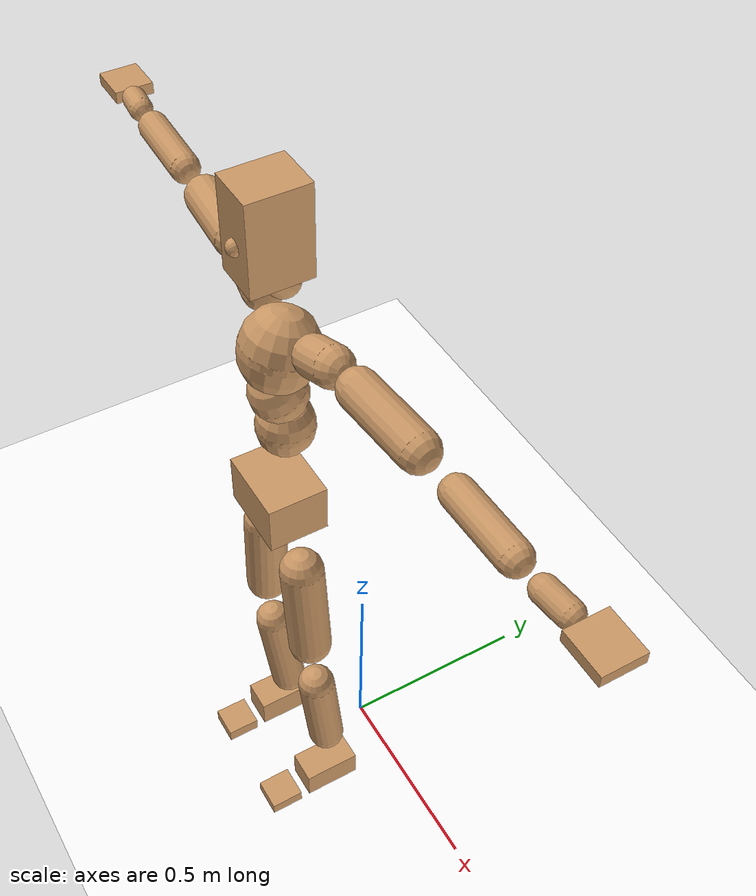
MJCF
<mujoco model="humanoid">
  <option integrator="implicitfast" />

  <visual>
    <global offwidth="1280" offheight="960" />
    <headlight active="1" ambient="0.34 0.34 0.34" diffuse="0.5 0.5 0.5" />
  </visual>

  <default>
    <joint damping="2" stiffness="2" armature="0.01" limited="true" solimplimit="0 .99 .01" />
    <geom condim="1" friction="0.7 0.005 0.0001" solimp=".99 .99 .003" solref="0.015 1" margin="0.001" rgba="0.8 0.6 .4 1" />
    <default class="smplcontact">
      <geom condim="3" friction="1. 0.005 0.0001" solref="0.015 1" solimp="0.98 0.98 0.001" priority="1" />
    </default>
    <default class="stiff_medium">
      <joint stiffness="10" />
    </default>
    <default class="stiff_medium_higher">
      <joint stiffness="50" />
    </default>
    <default class="stiff_high">
      <joint stiffness="100" />
    </default>
  </default>

  <asset>
    <texture type="skybox" builtin="gradient" rgb1="0.99 0.99 0.99" rgb2="0.608 0.828 0.892" width="100" />
    <texture builtin="flat" height="1278" mark="cross" markrgb="1 1 1" name="texgeom" random="0.01" rgb1="0.8 0.6 0.4" rgb2="0.8 0.6 0.4" type="cube" width="127" />
    <texture name="texplane" type="2d" builtin="checker" markrgb="1 1 1" rgb1="0.756 0.772 0.76" rgb2="0.6 0.6 0.6" width="100" height="100" />
    <material name="MatPlane" reflectance="0.5" texture="texplane" texrepeat="1 1" texuniform="true" />
    <material name="geom" texture="texgeom" texuniform="true" />
  </asset>

  <worldbody>
    <light name="tracking_light" pos="0 0 7" dir="0 0 -1" directional="true" cutoff="100" exponent="1" diffuse="1 1 1" specular="0.1 0.1 0.1" mode="trackcom" />
    <camera name="back" pos="0 3 2.4" xyaxes="-1 0 0 0 -1 2" mode="trackcom" />
    <camera name="side" pos="-3 0 2.4" xyaxes="0 -1 0 1 0 2" mode="trackcom" />
    <camera name="front_side" pos="-2.8 -2.8 0.8" xyaxes="0.5 -0.5 0 0.1 0.1 1" mode="trackcom" />
    <geom condim="3" name="floor" pos="0 0 0" rgba="1 1 1 1" size="100 100 .2" type="plane" material="MatPlane" />
    <body name="Pelvis" pos="-0.0018 -0.2233 1.07072" euler="90 0 0">
      <site name="Pelvis" size="0.01" />
      <freejoint name="Pelvis" />
      <geom type="box" pos="-0.0000 -0.0121 -0.0055" size="0.090865 0.06137 0.07055" quat="1.0000 0.0000 0.0000 0.0000" density="3165.830099" name="Pelvis" />
      <body name="L_Hip" pos="0.079925 -0.10511 -0.00782">
        <joint name="L_Hip_x" type="hinge" pos="0 0 0" axis="1 0 0" stiffness="8.727322708333334" range="-160.0 22.92" class="stiff_medium" damping="13.7654928941524" armature="0.009649837053974859"/>
        <joint name="L_Hip_y" type="hinge" pos="0 0 0" axis="0 1 0" stiffness="8.678915833333335" range="-70.0 70.0" class="stiff_medium" damping="7.844255494613409" armature="0.007089865306498746"/>
        <joint name="L_Hip_z" type="hinge" pos="0 0 0" axis="0 0 1" stiffness="8.683338229166669" range="-28.65 90.0" class="stiff_medium" damping="9.155596501626825" armature="0.00965353935184049"/>
        <geom type="capsule" density="2040.816327" fromto="0.007935 -0.08625 -0.001035 0.03151 -0.34523 -0.00414" size="0.052275" name="L_Hip" />
        <body name="L_Knee" pos="0.039445 -0.43148 -0.005175">
          <joint name="L_Knee_x" type="hinge" pos="0 0 0" axis="1 0 0" range="-5.16 171.89" damping="7.01397675499636" armature="0.009105876532635821" stiffness="1.6883283333333332"/>
          <joint name="L_Knee_y" type="hinge" pos="0 0 0" axis="0 1 0" range="-4.58 6.88" damping="6.0755838537689835" armature="0.006684317253510379" stiffness="1.7257147291666666"/>
          <joint name="L_Knee_z" type="hinge" pos="0 0 0" axis="0 0 1" range="-6.88 4.58" damping="6.984301330743021" armature="0.009122503294009918" stiffness="1.6710210833333332"/>
          <geom type="capsule" density="1234.567901" fromto="-0.003105 -0.09154 -0.010005 -0.012535 -0.36616 -0.04025" size="0.045985" name="L_Knee" />
          <body name="L_Ankle" pos="-0.01564 -0.4577 -0.050255">
            <joint name="L_Ankle_x" type="hinge" pos="0 0 0" axis="1 0 0" range="-45.84 45.84" class="stiff_medium" damping="4.176478959790078" armature="0.006860619347471826" stiffness="7.06244"/>
            <joint name="L_Ankle_y" type="hinge" pos="0 0 0" axis="0 1 0" range="-74.48 22.92" class="stiff_medium" damping="2.0744723161569043" armature="0.006770457346660474" stiffness="7.06244"/>
            <joint name="L_Ankle_z" type="hinge" pos="0 0 0" axis="0 0 1" range="-4.58 4.58" class="stiff_medium" damping="3.963966864211688" armature="0.006180203261734001" stiffness="7.06244"/>
            <geom type="box" pos="0.026795 -0.027485 0.02783" size="0.041055 0.03944 0.07225" quat="1.0000 0.0000 0.0000 0.0000" density="449.071558" name="L_Ankle" class="smplcontact" />
            <body name="L_Toe" pos="0.03036 -0.06417 0.137195">
              <joint name="L_Toe_x" type="hinge" pos="0 0 0" axis="1 0 0" range="-91.67 22.92" armature="0.005837950531633816" damping="1.2842145514302805" stiffness="1.412488"/>
              <joint name="L_Toe_y" type="hinge" pos="0 0 0" axis="0 1 0" range="-4.58 4.58" armature="0.00542409844322428" damping="1.2378589549599726" stiffness="1.412488"/>
              <joint name="L_Toe_z" type="hinge" pos="0 0 0" axis="0 0 1" range="-4.58 4.58" armature="0.004587311795946917" damping="1.1383780447666292" stiffness="1.412488"/>
              <geom type="box" pos="-0.00345 0.006325 0.02852" size="0.04063 0.017 0.04216" quat="1.0000 0.0000 0.0000 0.0000" density="423.206892" name="L_Toe" class="smplcontact" />
            </body>
          </body>
        </body>
      </body>
      <body name="R_Hip" pos="-0.077855 -0.104075 -0.004945">
        <joint name="R_Hip_x" type="hinge" pos="0 0 0" axis="1 0 0" stiffness="8.727322708333334" range="-160.0 22.92" class="stiff_medium" damping="13.7654928941524" armature="0.009649837053974859"/>
        <joint name="R_Hip_y" type="hinge" pos="0 0 0" axis="0 1 0" stiffness="8.678915833333335" range="-70.0 70.0" class="stiff_medium" damping="7.844255494613409" armature="0.007089865306498746"/>
        <joint name="R_Hip_z" type="hinge" pos="0 0 0" axis="0 0 1" stiffness="8.683338229166669" range="-90.0 28.65" class="stiff_medium" damping="9.155596501626825" armature="0.00965353935184049"/>
        <geom type="capsule" density="2040.816327" fromto="-0.008855 -0.087975 -0.00207 -0.03519 -0.352015 -0.008165" size="0.05151" name="R_Hip" />
        <body name="R_Knee" pos="-0.044045 -0.43999 -0.010235">
          <joint name="R_Knee_x" type="hinge" pos="0 0 0" axis="1 0 0" range="-5.16 171.89" damping="7.01397675499636" armature="0.009105876532635821" stiffness="1.6883283333333332"/>
          <joint name="R_Knee_y" type="hinge" pos="0 0 0" axis="0 1 0" range="-6.88 4.58" damping="6.0755838537689835" armature="0.006684317253510379" stiffness="1.7257147291666666"/>
          <joint name="R_Knee_z" type="hinge" pos="0 0 0" axis="0 0 1" range="-4.58 6.88" damping="6.984301330743021" armature="0.009122503294009918" stiffness="1.6710210833333332"/>
          <geom type="capsule" density="1234.567901" fromto="0.00368 -0.091655 -0.009775 0.01449 -0.366505 -0.03887" size="0.045985" name="R_Knee" />
          <body name="R_Ankle" pos="0.01817 -0.45816 -0.048645">
            <joint name="R_Ankle_x" type="hinge" pos="0 0 0" axis="1 0 0" range="-45.84 45.84" class="stiff_medium" damping="4.176478959790078" armature="0.006860619347471826" stiffness="7.06244"/>
            <joint name="R_Ankle_y" type="hinge" pos="0 0 0" axis="0 1 0" range="-22.92 74.48" class="stiff_medium" damping="2.0744723161569043" armature="0.006770457346660474" stiffness="7.06244"/>
            <joint name="R_Ankle_z" type="hinge" pos="0 0 0" axis="0 0 1" range="-4.58 4.58" class="stiff_medium" damping="3.963966864211688" armature="0.006180203261734001" stiffness="7.06244"/>
            <geom type="box" pos="-0.02438 -0.02001 0.02944" size="0.041055 0.04063 0.073525" quat="1.0000 0.0000 0.0000 0.0000" density="434.700981" name="R_Ankle" class="smplcontact" />
            <body name="R_Toe" pos="-0.02921 -0.055315 0.141795">
              <joint name="R_Toe_x" type="hinge" pos="0 0 0" axis="1 0 0" range="-91.67 22.92" armature="0.005837950531633816" damping="1.2842145514302805" stiffness="1.412488"/>
              <joint name="R_Toe_y" type="hinge" pos="0 0 0" axis="0 1 0" range="-4.58 4.58" armature="0.00542409844322428" damping="1.2378589549599726" stiffness="1.412488"/>
              <joint name="R_Toe_z" type="hinge" pos="0 0 0" axis="0 0 1" range="-4.58 4.58" armature="0.004587311795946917" damping="1.1383780447666292" stiffness="1.412488"/>
              <geom type="box" pos="0.00483 0.005175 0.026105" size="0.040715 0.01836 0.041905" quat="1.0000 0.0000 0.0000 0.0000" density="407.384095" name="R_Toe" class="smplcontact" />
            </body>
          </body>
        </body>
      </body>
      <body name="Torso" pos="-0.00275 0.1199 -0.02937">
        <joint name="Torso_x" type="hinge" pos="0 0 0" axis="1 0 0" range="-25.78 57.3" class="stiff_medium" damping="11.81147001711224" armature="0.008217594090370439" stiffness="7.545372765957447"/>
        <joint name="Torso_y" type="hinge" pos="0 0 0" axis="0 1 0" range="-57.3 57.3" class="stiff_high" damping="16.345734042083816" armature="0.008902954260066513" stiffness="75.02650625"/>
        <joint name="Torso_z" type="hinge" pos="0 0 0" axis="0 0 1" range="-34.38 34.38" class="stiff_high" damping="15.952974652763485" armature="0.008510118128156557" stiffness="74.76318085106384"/>
        <geom type="capsule" density="2040.816327" fromto="0.00275 0.06688 0.00055 0.0033 0.08173 0.00066" size="0.065365" name="Torso" />
        <body name="Spine" pos="0.00605 0.14872 0.00121">
          <joint name="Spine_x" type="hinge" pos="0 0 0" axis="1 0 0" stiffness="7.578839166666667" range="-25.78 57.3" class="stiff_medium" damping="11.723819310937005" armature="0.008060333733196647"/>
          <joint name="Spine_y" type="hinge" pos="0 0 0" axis="0 1 0" stiffness="7.556336458333334" range="-57.3 57.3" class="stiff_high" damping="6.571969453305571" armature="0.00893099427491694"/>
          <joint name="Spine_z" type="hinge" pos="0 0 0" axis="0 0 1" stiffness="15.286840000000002" range="-34.38 34.38" class="stiff_high" damping="9.741107563184851" armature="0.008621175010438999"/>
          <geom type="capsule" density="2040.816327" fromto="0.00077 0.02618 0.01254 0.00088 0.03201 0.0154" size="0.064175" name="Spine" />
          <body name="Chest" pos="0.00165 0.05819 0.02794">
            <joint name="Chest_x" type="hinge" pos="0 0 0" axis="1 0 0" stiffness="7.626978085106382" range="-25.78 57.3" class="stiff_medium" damping="11.679074794406215" armature="0.007948439315241999"/>
            <joint name="Chest_y" type="hinge" pos="0 0 0" axis="0 1 0" stiffness="7.934598936170212" range="-57.3 57.3" class="stiff_high" damping="6.745611634406754" armature="0.00896061285837632"/>
            <joint name="Chest_z" type="hinge" pos="0 0 0" axis="0 0 1" stiffness="15.258026666666666" range="-34.38 34.38" class="stiff_high" damping="9.760106498410147" armature="0.008671180908160615"/>
            <geom type="capsule" density="2040.816327" fromto="-0.00099 0.07502 -0.01903 -0.0011 0.09163 -0.02332" size="0.08517" name="Chest" />
            <body name="Neck" pos="-0.00308 0.23529 -0.04719">
              <joint name="Neck_x" type="hinge" pos="0 0 0" axis="1 0 0" range="-28.65 57.3" class="stiff_medium_higher" damping="6.712592069461457" armature="0.0064548412782273025" stiffness="34.90317604166667"/>
              <joint name="Neck_y" type="hinge" pos="0 0 0" axis="0 1 0" range="-40.11 40.11" class="stiff_medium_higher" damping="6.550882530757467" armature="0.006157962315185199" stiffness="34.84436875"/>
              <joint name="Neck_z" type="hinge" pos="0 0 0" axis="0 0 1" range="-40.11 40.11" class="stiff_medium_higher" damping="6.69912774198829" armature="0.006453814368165039" stiffness="34.768828125"/>
              <geom type="capsule" density="1000" fromto="0.0011 0.0143 0.01133 0.00451 0.0572 0.04521" size="0.03706" name="Neck" />
              <body name="Head" pos="0.00494 0.06175 0.048735">
                <joint name="Head_x" type="hinge" pos="0 0 0" axis="1 0 0" range="-28.65 57.3" class="stiff_medium_higher" damping="1.3185946842093061" armature="0.006276413043191972" stiffness="34.6275"/>
                <joint name="Head_y" type="hinge" pos="0 0 0" axis="0 1 0" range="-40.11 40.11" class="stiff_medium_higher" damping="1.2823363817030833" armature="0.00593598511240833" stiffness="34.6275"/>
                <joint name="Head_z" type="hinge" pos="0 0 0" axis="0 0 1" range="-40.11 40.11" class="stiff_medium_higher" damping="1.3203641162255555" armature="0.006293269075937091" stiffness="34.6275"/>
                <geom type="box" pos="-0.00399 0.08322 -0.01102" size="0.05454 0.10386 0.0684" quat="1.0000 0.0000 0.0000 0.0000" density="1018.069894" name="Head" />
                <geom type="capsule" name="nose" size="0.018 0.009" pos="0 0.0665 0.0475" quat="1 0 0 0" mass="0" contype="0" conaffinity="0" />
              </body>
            </body>
            <body name="L_Thorax" pos="0.088256 0.136304 -0.038192">
              <joint name="L_Thorax_x" type="hinge" pos="0 0 0" axis="1 0 0" range="-10.89 4.58" class="stiff_medium_higher" damping="15.585296848802365" armature="0.0073950860814152655" stiffness="41.05791927083333"/>
              <joint name="L_Thorax_y" type="hinge" pos="0 0 0" axis="0 1 0" range="-28.65 17.19" class="stiff_medium_higher" damping="17.29280013982934" armature="0.009043328979654666" stiffness="41.334465625"/>
              <joint name="L_Thorax_z" type="hinge" pos="0 0 0" axis="0 0 1" range="-31.51 40.11" class="stiff_medium_higher" damping="17.29305287784368" armature="0.009044841398426267" stiffness="41.328761979166664"/>
              <geom type="capsule" density="1000" fromto="0.020384 0.006832 -0.002016 0.081536 0.027328 -0.007952" size="0.044285" name="L_Thorax" />
              <body name="L_Shoulder" pos="0.10192 0.03416 -0.009968">
                <joint name="L_Shoulder_x" type="hinge" pos="0 0 0" axis="1 0 0" range="-97.4 97.4" class="stiff_medium" damping="4.447228761924851" armature="0.006713573682016813" stiffness="8.183190833333335"/>
                <joint name="L_Shoulder_y" type="hinge" pos="0 0 0" axis="0 1 0" range="-108.86 80.21" class="stiff_medium" damping="5.159061721415666" armature="0.008969434716996207" stiffness="8.242783124999999"/>
                <joint name="L_Shoulder_z" type="hinge" pos="0 0 0" axis="0 0 1" range="-97.4 85.94" class="stiff_medium" damping="5.159482600674743" armature="0.008971247994293108" stiffness="8.242461770833334"/>
                <geom type="capsule" density="1000" fromto="0.058128 -0.002912 -0.00616 0.232624 -0.011424 -0.02464" size="0.043945" name="L_Shoulder" />
                <body name="L_Elbow" pos="0.290752 -0.014336 -0.0308">
                  <joint name="L_Elbow_x" type="hinge" pos="0 0 0" axis="1 0 0" range="-17.19 4.58" damping="3.3758266586977776" armature="0.005689457284403685" stiffness="1.6024313124999998"/>
                  <joint name="L_Elbow_y" type="hinge" pos="0 0 0" axis="0 1 0" range="-180.0 17.19" damping="4.154019063663138" armature="0.008612290744145436" stiffness="1.6029068125000001"/>
                  <joint name="L_Elbow_z" type="hinge" pos="0 0 0" axis="0 0 1" range="-100.84 4.58" damping="4.154909420526191" armature="0.008621780710102719" stiffness="1.6018289374999999"/>
                  <geom type="capsule" density="1000" fromto="0.055776 0.002016 -0.000224 0.223328 0.008064 -0.001008" size="0.034425" name="L_Elbow" />
                  <body name="L_Wrist" pos="0.279104 0.01008 -0.001344">
                    <joint name="L_Wrist_x" type="hinge" pos="0 0 0" axis="1 0 0" range="-180.0 22.92" armature="0.005520148301438349" damping="1.2672034326464998" stiffness="1.4544940208333335"/>
                    <joint name="L_Wrist_y" type="hinge" pos="0 0 0" axis="0 1 0" range="-17.19 17.19" armature="0.007532262001153271" damping="1.48643714146602" stiffness="1.4666878125"/>
                    <joint name="L_Wrist_z" type="hinge" pos="0 0 0" axis="0 0 1" range="-22.92 22.92" armature="0.007641461026155367" damping="1.4947543431912946" stiffness="1.4619524583333332"/>
                    <geom type="capsule" density="1000" fromto="0.018816 -0.001792 -0.00336 0.075264 -0.00728 -0.01344" size="0.02703" name="L_Wrist" class="smplcontact" />
                    <body name="L_Hand" pos="0.09408 -0.009184 -0.016688">
                      <joint name="L_Hand_x" type="hinge" pos="0 0 0" axis="1 0 0" range="-17.19 17.19" armature="0.0045793633334455346" damping="1.1224576050810129" stiffness="1.37564"/>
                      <joint name="L_Hand_y" type="hinge" pos="0 0 0" axis="0 1 0" range="-51.57 51.57" armature="0.006158098758123378" damping="1.30163950275219" stiffness="1.37564"/>
                      <joint name="L_Hand_z" type="hinge" pos="0 0 0" axis="0 0 1" range="-91.67 91.67" armature="0.00657893225596182" damping="1.3453804197022727" stiffness="1.37564"/>
                      <geom type="box" pos="0.055216 0.00112 -0.006496" size="0.049725 0.01343 0.04573" quat="1.0000 0.0000 0.0000 0.0000" density="400.552564" name="L_Hand" class="smplcontact" />
                    </body>
                  </body>
                </body>
              </body>
            </body>
            <body name="R_Thorax" pos="-0.091616 0.133056 -0.043232">
              <joint name="R_Thorax_x" type="hinge" pos="0 0 0" axis="1 0 0" range="-10.89 4.58" class="stiff_medium_higher" damping="15.585296848802365" armature="0.0073950860814152655" stiffness="41.05791927083333"/>
              <joint name="R_Thorax_y" type="hinge" pos="0 0 0" axis="0 1 0" range="-17.19 28.65" class="stiff_medium_higher" damping="17.29280013982934" armature="0.009043328979654666" stiffness="41.334465625"/>
              <joint name="R_Thorax_z" type="hinge" pos="0 0 0" axis="0 0 1" range="-40.11 31.51" class="stiff_medium_higher" damping="17.29305287784368" armature="0.009044841398426267" stiffness="41.328761979166664"/>
              <geom type="capsule" density="1000" fromto="-0.021504 0.00728 -0.002016 -0.086016 0.02912 -0.008176" size="0.043435" name="R_Thorax" />
              <body name="R_Shoulder" pos="-0.10752 0.036512 -0.010192">
                <joint name="R_Shoulder_x" type="hinge" pos="0 0 0" axis="1 0 0" range="-97.4 97.4" class="stiff_medium" damping="4.447228761924851" armature="0.006713573682016813" stiffness="8.183190833333335"/>
                <joint name="R_Shoulder_y" type="hinge" pos="0 0 0" axis="0 1 0" range="-80.21 108.86" class="stiff_medium" damping="5.159061721415666" armature="0.008969434716996207" stiffness="8.242783124999999"/>
                <joint name="R_Shoulder_z" type="hinge" pos="0 0 0" axis="0 0 1" range="-85.94 97.4" class="stiff_medium" damping="5.159482600674743" armature="0.008971247994293108" stiffness="8.242461770833334"/>
                <geom type="capsule" density="1000" fromto="-0.056784 -0.003024 -0.004816 -0.22736 -0.011984 -0.019152" size="0.045135" name="R_Shoulder" />
                <body name="R_Elbow" pos="-0.284144 -0.014896 -0.023968">
                  <joint name="R_Elbow_x" type="hinge" pos="0 0 0" axis="1 0 0" range="-17.19 4.58" damping="3.3758266586977776" armature="0.005689457284403685" stiffness="1.6024313124999998"/>
                  <joint name="R_Elbow_y" type="hinge" pos="0 0 0" axis="0 1 0" range="-17.19 180.0" damping="4.154019063663138" armature="0.008612290744145436" stiffness="1.6029068125000001"/>
                  <joint name="R_Elbow_z" type="hinge" pos="0 0 0" axis="0 0 1" range="-4.58 100.84" damping="4.154909420526191" armature="0.008621780710102719" stiffness="1.6018289374999999"/>
                  <geom type="capsule" density="1000" fromto="-0.057232 0.001792 -0.001232 -0.228704 0.006944 -0.004928" size="0.03468" name="R_Elbow" />
                  <body name="R_Wrist" pos="-0.285936 0.008736 -0.006272">
                    <joint name="R_Wrist_x" type="hinge" pos="0 0 0" axis="1 0 0" range="-180.0 22.92" armature="0.005520148301438349" damping="1.2672034326464998" stiffness="1.4544940208333335"/>
                    <joint name="R_Wrist_y" type="hinge" pos="0 0 0" axis="0 1 0" range="-17.19 17.19" armature="0.007532262001153271" damping="1.48643714146602" stiffness="1.4666878125"/>
                    <joint name="R_Wrist_z" type="hinge" pos="0 0 0" axis="0 0 1" range="-22.92 22.92" armature="0.007641461026155367" damping="1.4947543431912946" stiffness="1.4619524583333332"/>
                    <geom type="capsule" density="1000" fromto="-0.018928 -0.001344 -0.002352 -0.075824 -0.005488 -0.009296" size="0.02771" name="R_Wrist" class="smplcontact" />
                    <body name="R_Hand" pos="-0.094752 -0.006832 -0.011536">
                      <joint name="R_Hand_x" type="hinge" pos="0 0 0" axis="1 0 0" range="-17.19 17.19" armature="0.0045793633334455346" damping="1.1224576050810129" stiffness="1.37564"/>
                      <joint name="R_Hand_y" type="hinge" pos="0 0 0" axis="0 1 0" range="-51.57 51.57" armature="0.006158098758123378" damping="1.30163950275219" stiffness="1.37564"/>
                      <joint name="R_Hand_z" type="hinge" pos="0 0 0" axis="0 0 1" range="-91.67 91.67" armature="0.00657893225596182" damping="1.3453804197022727" stiffness="1.37564"/>
                      <geom type="box" pos="-0.051744 -0.001008 -0.008848" size="0.048365 0.01394 0.04641" quat="1.0000 0.0000 0.0000 0.0000" density="403.679611" name="R_Hand" class="smplcontact" />
                    </body>
                  </body>
                </body>
              </body>
            </body>
          </body>
        </body>
      </body>
    </body>
  </worldbody>
  <actuator>
    <general name="L_Hip_x" joint="L_Hip_x" biastype="affine" gainprm="250.76221931834345" biasprm="-187.92086717777457 -157.09180875 -1.8353990525536534" ctrllimited="true" ctrlrange="-1 1" forcerange="-314.1836175 314.1836175" />
    <general name="L_Hip_y" joint="L_Hip_y" biastype="affine" gainprm="190.85932756186895" biasprm="0.0 -156.220485 -1.5688510989226818" ctrllimited="true" ctrlrange="-1 1" forcerange="-312.44097 312.44097" />
    <general name="L_Hip_z" joint="L_Hip_z" biastype="affine" gainprm="161.83570250402894" biasprm="83.67990180043974 -156.30008812500003 -1.831119300325365" ctrllimited="true" ctrlrange="-1 1" forcerange="-312.60017625000006 312.60017625000006" />
    <general name="L_Knee_x" joint="L_Knee_x" biastype="affine" gainprm="234.77006558011243" biasprm="221.08564266688586 -151.94955 -1.75349418874909" ctrllimited="true" ctrlrange="-1 1" forcerange="-303.8991 303.8991" />
    <general name="L_Knee_y" joint="L_Knee_y" biastype="affine" gainprm="15.532576629453967" biasprm="3.117358311321477 -155.31432562499998 -1.5188959634422459" ctrllimited="true" ctrlrange="-1 1" forcerange="-310.62865124999996 310.62865124999996" />
    <general name="L_Knee_z" joint="L_Knee_z" biastype="affine" gainprm="15.040297557662827" biasprm="-3.0185588466513527 -150.3918975 -1.7460753326857552" ctrllimited="true" ctrlrange="-1 1" forcerange="-300.783795 300.783795" />
    <general name="L_Ankle_x" joint="L_Ankle_x" biastype="affine" gainprm="50.85331364999966" biasprm="0.0 -63.56196 -1.3921596532633593" ctrllimited="true" ctrlrange="-1 1" forcerange="-127.12392 127.12392" />
    <general name="L_Ankle_y" joint="L_Ankle_y" biastype="affine" gainprm="54.02609892571954" biasprm="-28.599442100719706 -63.56196 -1.382981544104603" ctrllimited="true" ctrlrange="-1 1" forcerange="-127.12392 127.12392" />
    <general name="L_Ankle_z" joint="L_Ankle_z" biastype="affine" gainprm="5.080893903075881" biasprm="0.0 -63.56196 -1.3213222880705626" ctrllimited="true" ctrlrange="-1 1" forcerange="-127.12392 127.12392" />
    <general name="L_Toe_x" joint="L_Toe_x" biastype="affine" gainprm="50.84887618807557" biasprm="-30.507550728075707 -50.849568 -0.5136858205721122" ctrllimited="true" ctrlrange="-1 1" forcerange="-101.699136 101.699136" />
    <general name="L_Toe_y" joint="L_Toe_y" biastype="affine" gainprm="4.064715122460705" biasprm="0.0 -50.849568 -0.49514358198398906" ctrllimited="true" ctrlrange="-1 1" forcerange="-101.699136 101.699136" />
    <general name="L_Toe_z" joint="L_Toe_z" biastype="affine" gainprm="4.064715122460705" biasprm="0.0 -50.849568 -0.4553512179066517" ctrllimited="true" ctrlrange="-1 1" forcerange="-101.699136 101.699136" />
    <general name="R_Hip_x" joint="R_Hip_x" biastype="affine" gainprm="250.76221931834345" biasprm="-187.92086717777457 -157.09180875 -1.8353990525536534" ctrllimited="true" ctrlrange="-1 1" forcerange="-314.1836175 314.1836175" />
    <general name="R_Hip_y" joint="R_Hip_y" biastype="affine" gainprm="190.85932756186895" biasprm="0.0 -156.220485 -1.5688510989226818" ctrllimited="true" ctrlrange="-1 1" forcerange="-312.44097 312.44097" />
    <general name="R_Hip_z" joint="R_Hip_z" biastype="affine" gainprm="161.83570250402894" biasprm="-83.67990180043974 -156.30008812500003 -1.831119300325365" ctrllimited="true" ctrlrange="-1 1" forcerange="-312.60017625000006 312.60017625000006" />
    <general name="R_Knee_x" joint="R_Knee_x" biastype="affine" gainprm="234.77006558011243" biasprm="221.08564266688586 -151.94955 -1.75349418874909" ctrllimited="true" ctrlrange="-1 1" forcerange="-303.8991 303.8991" />
    <general name="R_Knee_y" joint="R_Knee_y" biastype="affine" gainprm="15.532576629453967" biasprm="-3.117358311321477 -155.31432562499998 -1.5188959634422459" ctrllimited="true" ctrlrange="-1 1" forcerange="-310.62865124999996 310.62865124999996" />
    <general name="R_Knee_z" joint="R_Knee_z" biastype="affine" gainprm="15.040297557662827" biasprm="3.0185588466513527 -150.3918975 -1.7460753326857552" ctrllimited="true" ctrlrange="-1 1" forcerange="-300.783795 300.783795" />
    <general name="R_Ankle_x" joint="R_Ankle_x" biastype="affine" gainprm="50.85331364999966" biasprm="0.0 -63.56196 -1.3921596532633593" ctrllimited="true" ctrlrange="-1 1" forcerange="-127.12392 127.12392" />
    <general name="R_Ankle_y" joint="R_Ankle_y" biastype="affine" gainprm="54.02609892571954" biasprm="28.599442100719706 -63.56196 -1.382981544104603" ctrllimited="true" ctrlrange="-1 1" forcerange="-127.12392 127.12392" />
    <general name="R_Ankle_z" joint="R_Ankle_z" biastype="affine" gainprm="5.080893903075881" biasprm="0.0 -63.56196 -1.3213222880705626" ctrllimited="true" ctrlrange="-1 1" forcerange="-127.12392 127.12392" />
    <general name="R_Toe_x" joint="R_Toe_x" biastype="affine" gainprm="50.84887618807557" biasprm="-30.507550728075707 -50.849568 -0.5136858205721122" ctrllimited="true" ctrlrange="-1 1" forcerange="-101.699136 101.699136" />
    <general name="R_Toe_y" joint="R_Toe_y" biastype="affine" gainprm="4.064715122460705" biasprm="0.0 -50.849568 -0.49514358198398906" ctrllimited="true" ctrlrange="-1 1" forcerange="-101.699136 101.699136" />
    <general name="R_Toe_z" joint="R_Toe_z" biastype="affine" gainprm="4.064715122460705" biasprm="0.0 -50.849568 -0.4553512179066517" ctrllimited="true" ctrlrange="-1 1" forcerange="-101.699136 101.699136" />
    <general name="Torso_x" joint="Torso_x" biastype="affine" gainprm="131.2912555981779" biasprm="49.81103004880317 -181.08894638297875 -3.1497253378965975" ctrllimited="true" ctrlrange="-1 1" forcerange="-271.6334195744681 271.6334195744681" />
    <general name="Torso_y" joint="Torso_y" biastype="affine" gainprm="180.0768787366646" biasprm="0.0 -180.06361499999997 -3.2691468084167634" ctrllimited="true" ctrlrange="-1 1" forcerange="-270.0954225 270.0954225" />
    <general name="Torso_z" joint="Torso_z" biastype="affine" gainprm="107.66691073597222" biasprm="0.0 -179.4316340425532 -3.190594930552697" ctrllimited="true" ctrlrange="-1 1" forcerange="-269.1474510638298 269.1474510638298" />
    <general name="Spine_x" joint="Spine_x" biastype="affine" gainprm="131.8735788187468" biasprm="50.03195960961601 -181.89213999999998 -3.126351816249868" ctrllimited="true" ctrlrange="-1 1" forcerange="-272.83821 272.83821" />
    <general name="Spine_y" joint="Spine_y" biastype="affine" gainprm="181.36543364642276" biasprm="0.0 -181.352075 -3.2859847266527855" ctrllimited="true" ctrlrange="-1 1" forcerange="-272.0281125 272.0281125" />
    <general name="Spine_z" joint="Spine_z" biastype="affine" gainprm="110.07335555946118" biasprm="0.0 -183.44208000000003 -3.2470358543949502" ctrllimited="true" ctrlrange="-1 1" forcerange="-275.16312000000005 275.16312000000005" />
    <general name="Chest_x" joint="Chest_x" biastype="affine" gainprm="132.71120728868848" biasprm="50.349750285742175 -183.04747404255318 -3.1144199451749905" ctrllimited="true" ctrlrange="-1 1" forcerange="-274.57121106382976 274.57121106382976" />
    <general name="Chest_y" joint="Chest_y" biastype="affine" gainprm="190.44440183469047" biasprm="0.0 -190.4303744680851 -3.372805817203377" ctrllimited="true" ctrlrange="-1 1" forcerange="-285.6455617021276 285.6455617021276" />
    <general name="Chest_z" joint="Chest_z" biastype="affine" gainprm="109.86588427796326" biasprm="0.0 -183.09632 -3.2533688328033823" ctrllimited="true" ctrlrange="-1 1" forcerange="-274.64448 274.64448" />
    <general name="Neck_x" joint="Neck_x" biastype="affine" gainprm="18.849103411441675" biasprm="6.283034470480558 -25.13028675 -0.5370073655569166" ctrllimited="true" ctrlrange="-1 1" forcerange="-50.2605735 50.2605735" />
    <general name="Neck_y" joint="Neck_y" biastype="affine" gainprm="17.562855459104753" biasprm="0.0 -25.087945500000004 -0.5240706024605973" ctrllimited="true" ctrlrange="-1 1" forcerange="-50.17589100000001 50.17589100000001" />
    <general name="Neck_z" joint="Neck_z" biastype="affine" gainprm="17.524780179633215" biasprm="0.0 -25.033556249999997 -0.5359302193590633" ctrllimited="true" ctrlrange="-1 1" forcerange="-50.06711249999999 50.06711249999999" />
    <general name="Head_x" joint="Head_x" biastype="affine" gainprm="12.46681825555589" biasprm="4.155606085185297 -16.621199999999998 -0.5274378736837225" ctrllimited="true" ctrlrange="-1 1" forcerange="-33.242399999999996 33.242399999999996" />
    <general name="Head_y" joint="Head_y" biastype="affine" gainprm="11.635697038518831" biasprm="0.0 -16.621199999999998 -0.5129345526812333" ctrllimited="true" ctrlrange="-1 1" forcerange="-33.242399999999996 33.242399999999996" />
    <general name="Head_z" joint="Head_z" biastype="affine" gainprm="11.635697038518831" biasprm="0.0 -16.621199999999998 -0.5281456464902222" ctrllimited="true" ctrlrange="-1 1" forcerange="-33.242399999999996 33.242399999999996" />
    <general name="L_Thorax_x" joint="L_Thorax_x" biastype="affine" gainprm="13.302885828959134" biasprm="-5.426063967726708 -98.53900625 -1.2468237479041893" ctrllimited="true" ctrlrange="-1 1" forcerange="-197.0780125 197.0780125" />
    <general name="L_Thorax_y" joint="L_Thorax_y" biastype="affine" gainprm="39.68400996413428" biasprm="-9.92100249103357 -99.2027175 -1.3834240111863474" ctrllimited="true" ctrlrange="-1 1" forcerange="-198.405435 198.405435" />
    <general name="L_Thorax_z" joint="L_Thorax_z" biastype="affine" gainprm="61.993381532168215" biasprm="7.444053074234105 -99.18902874999999 -1.3834442302274947" ctrllimited="true" ctrlrange="-1 1" forcerange="-198.37805749999998 198.37805749999998" />
    <general name="L_Shoulder_x" joint="L_Shoulder_x" biastype="affine" gainprm="66.77290039358756" biasprm="0.0 -39.279316 -1.1859276698466272" ctrllimited="true" ctrlrange="-1 1" forcerange="-78.558632 78.558632" />
    <general name="L_Shoulder_y" joint="L_Shoulder_y" biastype="affine" gainprm="65.28074571724738" biasprm="-9.892068359862156 -39.565359 -1.375749792377511" ctrllimited="true" ctrlrange="-1 1" forcerange="-79.130718 79.130718" />
    <general name="L_Shoulder_z" joint="L_Shoulder_z" biastype="affine" gainprm="63.29986413269569" biasprm="-3.9566730825826015 -39.5638165 -1.3758620268465984" ctrllimited="true" ctrlrange="-1 1" forcerange="-79.127633 79.127633" />
    <general name="L_Elbow_x" joint="L_Elbow_x" biastype="affine" gainprm="10.959423878208607" biasprm="-6.348109099871869 -57.687527249999995 -0.5401322653916444" ctrllimited="true" ctrlrange="-1 1" forcerange="-115.37505449999999 115.37505449999999" />
    <general name="L_Elbow_y" joint="L_Elbow_y" biastype="affine" gainprm="99.29857917588318" biasprm="-81.98591041952199 -57.704645250000006 -0.664643050186102" ctrllimited="true" ctrlrange="-1 1" forcerange="-115.40929050000001 115.40929050000001" />
    <general name="L_Elbow_z" joint="L_Elbow_z" biastype="affine" gainprm="53.050443583693216" biasprm="-48.440862259213716 -57.66584175 -0.6647855072841906" ctrllimited="true" ctrlrange="-1 1" forcerange="-115.3316835 115.3316835" />
    <general name="L_Wrist_x" joint="L_Wrist_x" biastype="affine" gainprm="15.453804584687227" biasprm="-11.962761798554453 -8.726964125 -0.5068813730585999" ctrllimited="true" ctrlrange="-1 1" forcerange="-17.45392825 17.45392825" />
    <general name="L_Wrist_y" joint="L_Wrist_y" biastype="affine" gainprm="2.6402325313805997" biasprm="0.0 -8.800126875 -0.5945748565864081" ctrllimited="true" ctrlrange="-1 1" forcerange="-17.60025375 17.60025375" />
    <general name="L_Wrist_z" joint="L_Wrist_z" biastype="affine" gainprm="3.5089443546901196" biasprm="0.0 -8.77171475 -0.5979017372765179" ctrllimited="true" ctrlrange="-1 1" forcerange="-17.5434295 17.5434295" />
    <general name="L_Hand_x" joint="L_Hand_x" biastype="affine" gainprm="2.476334396804983" biasprm="0.0 -8.25384 -0.4489830420324052" ctrllimited="true" ctrlrange="-1 1" forcerange="-16.50768 16.50768" />
    <general name="L_Hand_y" joint="L_Hand_y" biastype="affine" gainprm="7.429003190414948" biasprm="0.0 -8.25384 -0.5206558011008761" ctrllimited="true" ctrlrange="-1 1" forcerange="-16.50768 16.50768" />
    <general name="L_Hand_z" joint="L_Hand_z" biastype="affine" gainprm="13.20567621612058" biasprm="0.0 -8.25384 -0.5381521678809091" ctrllimited="true" ctrlrange="-1 1" forcerange="-16.50768 16.50768" />
    <general name="R_Thorax_x" joint="R_Thorax_x" biastype="affine" gainprm="13.302885828959134" biasprm="-5.426063967726708 -98.53900625 -1.2468237479041893" ctrllimited="true" ctrlrange="-1 1" forcerange="-197.0780125 197.0780125" />
    <general name="R_Thorax_y" joint="R_Thorax_y" biastype="affine" gainprm="39.68400996413428" biasprm="9.921002491033565 -99.2027175 -1.3834240111863474" ctrllimited="true" ctrlrange="-1 1" forcerange="-198.405435 198.405435" />
    <general name="R_Thorax_z" joint="R_Thorax_z" biastype="affine" gainprm="61.993381532168215" biasprm="-7.444053074234105 -99.18902874999999 -1.3834442302274947" ctrllimited="true" ctrlrange="-1 1" forcerange="-198.37805749999998 198.37805749999998" />
    <general name="R_Shoulder_x" joint="R_Shoulder_x" biastype="affine" gainprm="66.77290039358756" biasprm="0.0 -39.279316 -1.1859276698466272" ctrllimited="true" ctrlrange="-1 1" forcerange="-78.558632 78.558632" />
    <general name="R_Shoulder_y" joint="R_Shoulder_y" biastype="affine" gainprm="65.28074571724738" biasprm="9.892068359862156 -39.565359 -1.375749792377511" ctrllimited="true" ctrlrange="-1 1" forcerange="-79.130718 79.130718" />
    <general name="R_Shoulder_z" joint="R_Shoulder_z" biastype="affine" gainprm="63.29986413269569" biasprm="3.9566730825825926 -39.5638165 -1.3758620268465984" ctrllimited="true" ctrlrange="-1 1" forcerange="-79.127633 79.127633" />
    <general name="R_Elbow_x" joint="R_Elbow_x" biastype="affine" gainprm="10.959423878208607" biasprm="-6.348109099871869 -57.687527249999995 -0.5401322653916444" ctrllimited="true" ctrlrange="-1 1" forcerange="-115.37505449999999 115.37505449999999" />
    <general name="R_Elbow_y" joint="R_Elbow_y" biastype="affine" gainprm="99.29857917588318" biasprm="81.98591041952199 -57.704645250000006 -0.664643050186102" ctrllimited="true" ctrlrange="-1 1" forcerange="-115.40929050000001 115.40929050000001" />
    <general name="R_Elbow_z" joint="R_Elbow_z" biastype="affine" gainprm="53.050443583693216" biasprm="48.44086225921371 -57.66584175 -0.6647855072841906" ctrllimited="true" ctrlrange="-1 1" forcerange="-115.3316835 115.3316835" />
    <general name="R_Wrist_x" joint="R_Wrist_x" biastype="affine" gainprm="15.453804584687227" biasprm="-11.962761798554453 -8.726964125 -0.5068813730585999" ctrllimited="true" ctrlrange="-1 1" forcerange="-17.45392825 17.45392825" />
    <general name="R_Wrist_y" joint="R_Wrist_y" biastype="affine" gainprm="2.6402325313805997" biasprm="0.0 -8.800126875 -0.5945748565864081" ctrllimited="true" ctrlrange="-1 1" forcerange="-17.60025375 17.60025375" />
    <general name="R_Wrist_z" joint="R_Wrist_z" biastype="affine" gainprm="3.5089443546901196" biasprm="0.0 -8.77171475 -0.5979017372765179" ctrllimited="true" ctrlrange="-1 1" forcerange="-17.5434295 17.5434295" />
    <general name="R_Hand_x" joint="R_Hand_x" biastype="affine" gainprm="2.476334396804983" biasprm="0.0 -8.25384 -0.4489830420324052" ctrllimited="true" ctrlrange="-1 1" forcerange="-16.50768 16.50768" />
    <general name="R_Hand_y" joint="R_Hand_y" biastype="affine" gainprm="7.429003190414948" biasprm="0.0 -8.25384 -0.5206558011008761" ctrllimited="true" ctrlrange="-1 1" forcerange="-16.50768 16.50768" />
    <general name="R_Hand_z" joint="R_Hand_z" biastype="affine" gainprm="13.20567621612058" biasprm="0.0 -8.25384 -0.5381521678809091" ctrllimited="true" ctrlrange="-1 1" forcerange="-16.50768 16.50768" />
  </actuator>
  <contact>
    <exclude body1="Torso" body2="Chest" />
    <exclude body1="Head" body2="Chest" />
    <exclude body1="R_Knee" body2="R_Toe" />
    <exclude body1="R_Knee" body2="L_Ankle" />
    <exclude body1="R_Knee" body2="L_Toe" />
    <exclude body1="L_Knee" body2="L_Toe" />
    <exclude body1="L_Knee" body2="R_Ankle" />
    <exclude body1="L_Knee" body2="R_Toe" />
    <exclude body1="L_Shoulder" body2="Chest" />
    <exclude body1="R_Shoulder" body2="Chest" />
  </contact>
  <sensor>
    <framelinvel name="sensor_Pelvis_framelinvel" objtype="xbody" objname="Pelvis" />
    <framelinvel name="sensor_L_Hip_framelinvel" objtype="xbody" objname="L_Hip" />
    <framelinvel name="sensor_L_Knee_framelinvel" objtype="xbody" objname="L_Knee" />
    <framelinvel name="sensor_L_Ankle_framelinvel" objtype="xbody" objname="L_Ankle" />
    <framelinvel name="sensor_L_Toe_framelinvel" objtype="xbody" objname="L_Toe" />
    <framelinvel name="sensor_R_Hip_framelinvel" objtype="xbody" objname="R_Hip" />
    <framelinvel name="sensor_R_Knee_framelinvel" objtype="xbody" objname="R_Knee" />
    <framelinvel name="sensor_R_Ankle_framelinvel" objtype="xbody" objname="R_Ankle" />
    <framelinvel name="sensor_R_Toe_framelinvel" objtype="xbody" objname="R_Toe" />
    <framelinvel name="sensor_Torso_framelinvel" objtype="xbody" objname="Torso" />
    <framelinvel name="sensor_Spine_framelinvel" objtype="xbody" objname="Spine" />
    <framelinvel name="sensor_Chest_framelinvel" objtype="xbody" objname="Chest" />
    <framelinvel name="sensor_Neck_framelinvel" objtype="xbody" objname="Neck" />
    <framelinvel name="sensor_Head_framelinvel" objtype="xbody" objname="Head" />
    <framelinvel name="sensor_L_Thorax_framelinvel" objtype="xbody" objname="L_Thorax" />
    <framelinvel name="sensor_L_Shoulder_framelinvel" objtype="xbody" objname="L_Shoulder" />
    <framelinvel name="sensor_L_Elbow_framelinvel" objtype="xbody" objname="L_Elbow" />
    <framelinvel name="sensor_L_Wrist_framelinvel" objtype="xbody" objname="L_Wrist" />
    <framelinvel name="sensor_L_Hand_framelinvel" objtype="xbody" objname="L_Hand" />
    <framelinvel name="sensor_R_Thorax_framelinvel" objtype="xbody" objname="R_Thorax" />
    <framelinvel name="sensor_R_Shoulder_framelinvel" objtype="xbody" objname="R_Shoulder" />
    <framelinvel name="sensor_R_Elbow_framelinvel" objtype="xbody" objname="R_Elbow" />
    <framelinvel name="sensor_R_Wrist_framelinvel" objtype="xbody" objname="R_Wrist" />
    <framelinvel name="sensor_R_Hand_framelinvel" objtype="xbody" objname="R_Hand" />
    <frameangvel name="sensor_Pelvis_frameangvel" objtype="xbody" objname="Pelvis" />
    <frameangvel name="sensor_L_Hip_frameangvel" objtype="xbody" objname="L_Hip" />
    <frameangvel name="sensor_L_Knee_frameangvel" objtype="xbody" objname="L_Knee" />
    <frameangvel name="sensor_L_Ankle_frameangvel" objtype="xbody" objname="L_Ankle" />
    <frameangvel name="sensor_L_Toe_frameangvel" objtype="xbody" objname="L_Toe" />
    <frameangvel name="sensor_R_Hip_frameangvel" objtype="xbody" objname="R_Hip" />
    <frameangvel name="sensor_R_Knee_frameangvel" objtype="xbody" objname="R_Knee" />
    <frameangvel name="sensor_R_Ankle_frameangvel" objtype="xbody" objname="R_Ankle" />
    <frameangvel name="sensor_R_Toe_frameangvel" objtype="xbody" objname="R_Toe" />
    <frameangvel name="sensor_Torso_frameangvel" objtype="xbody" objname="Torso" />
    <frameangvel name="sensor_Spine_frameangvel" objtype="xbody" objname="Spine" />
    <frameangvel name="sensor_Chest_frameangvel" objtype="xbody" objname="Chest" />
    <frameangvel name="sensor_Neck_frameangvel" objtype="xbody" objname="Neck" />
    <frameangvel name="sensor_Head_frameangvel" objtype="xbody" objname="Head" />
    <frameangvel name="sensor_L_Thorax_frameangvel" objtype="xbody" objname="L_Thorax" />
    <frameangvel name="sensor_L_Shoulder_frameangvel" objtype="xbody" objname="L_Shoulder" />
    <frameangvel name="sensor_L_Elbow_frameangvel" objtype="xbody" objname="L_Elbow" />
    <frameangvel name="sensor_L_Wrist_frameangvel" objtype="xbody" objname="L_Wrist" />
    <frameangvel name="sensor_L_Hand_frameangvel" objtype="xbody" objname="L_Hand" />
    <frameangvel name="sensor_R_Thorax_frameangvel" objtype="xbody" objname="R_Thorax" />
    <frameangvel name="sensor_R_Shoulder_frameangvel" objtype="xbody" objname="R_Shoulder" />
    <frameangvel name="sensor_R_Elbow_frameangvel" objtype="xbody" objname="R_Elbow" />
    <frameangvel name="sensor_R_Wrist_frameangvel" objtype="xbody" objname="R_Wrist" />
    <frameangvel name="sensor_R_Hand_frameangvel" objtype="xbody" objname="R_Hand" />
    <subtreelinvel name="Chest_subtreelinvel" body="Chest" />
    <gyro name="Pelvis_gyro" site="Pelvis" />
  </sensor>
</mujoco>
